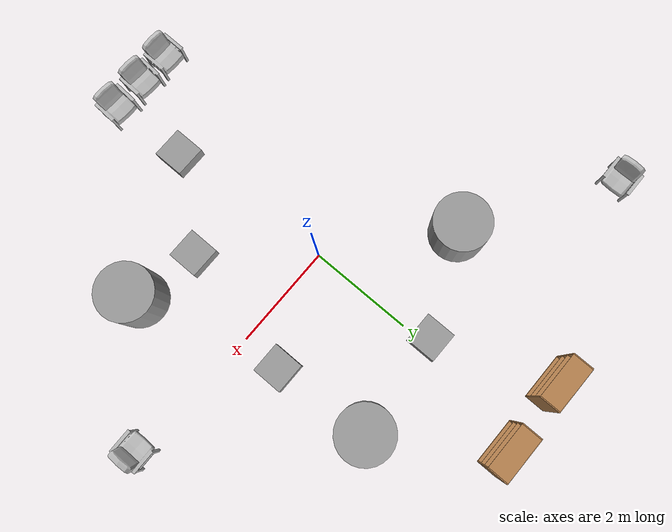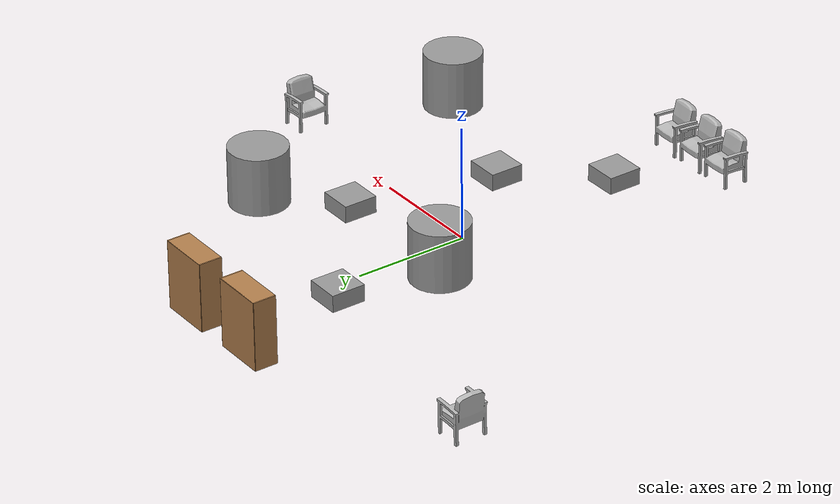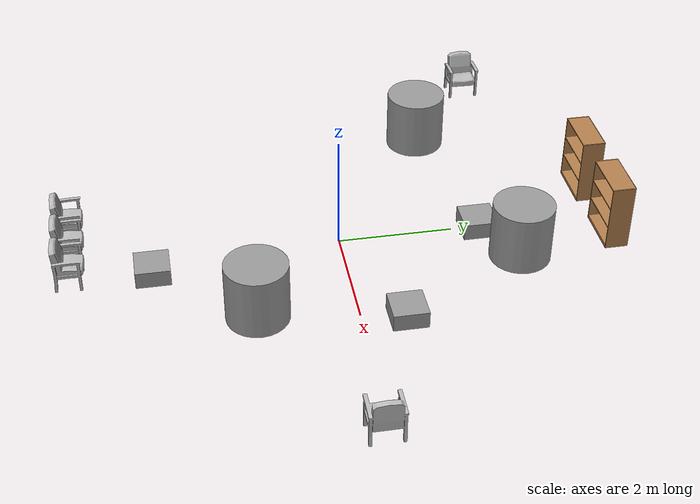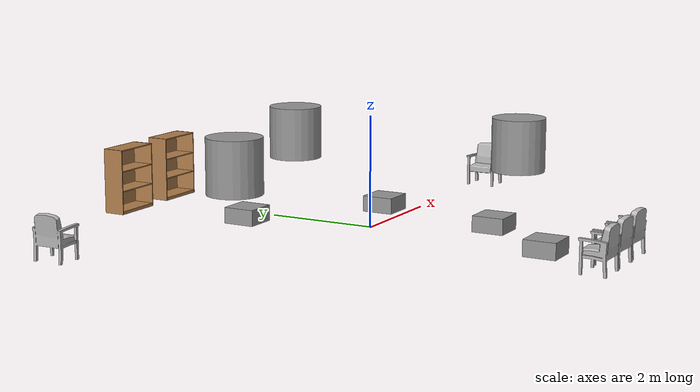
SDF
<?xml version='1.0'?>
<sdf version='1.7'>
  <model name='IMAV_indoor1'>
    <link name='link_0'>
      <inertial>
        <mass>1</mass>
        <inertia>
          <ixx>0.145833</ixx>
          <ixy>0</ixy>
          <ixz>0</ixz>
          <iyy>0.145833</iyy>
          <iyz>0</iyz>
          <izz>0.125</izz>
        </inertia>
        <pose>0 0 0 0 -0 0</pose>
      </inertial>
      <pose>-1.75504 1.69796 1.25 0 -0 0</pose>
      <gravity>1</gravity>
      <self_collide>0</self_collide>
      <kinematic>0</kinematic>
      <enable_wind>0</enable_wind>
      <visual name='visual'>
        <pose>0 0 0 0 -0 0</pose>
        <geometry>
          <cylinder>
            <radius>0.5</radius>
            <length>1</length>
          </cylinder>
        </geometry>
        <material>
          <lighting>1</lighting>
          <script>
            <uri>file://media/materials/scripts/gazebo.material</uri>
            <name>Gazebo/Grey</name>
          </script>
          <shader type='pixel'>
            <normal_map>__default__</normal_map>
          </shader>
          <ambient>0.3 0.3 0.3 1</ambient>
          <diffuse>0.7 0.7 0.7 1</diffuse>
          <specular>0.01 0.01 0.01 1</specular>
          <emissive>0 0 0 1</emissive>
        </material>
        <transparency>0</transparency>
        <cast_shadows>1</cast_shadows>
      </visual>
      <collision name='collision'>
        <laser_retro>0</laser_retro>
        <max_contacts>10</max_contacts>
        <pose>0 0 0 0 -0 0</pose>
        <geometry>
          <cylinder>
            <radius>0.1</radius>
            <length>2.5</length>
          </cylinder>
        </geometry>
        <surface>
          <friction>
            <ode>
              <mu>1</mu>
              <mu2>1</mu2>
              <fdir1>0 0 0</fdir1>
              <slip1>0</slip1>
              <slip2>0</slip2>
            </ode>
            <torsional>
              <coefficient>1</coefficient>
              <patch_radius>0</patch_radius>
              <surface_radius>0</surface_radius>
              <use_patch_radius>1</use_patch_radius>
              <ode>
                <slip>0</slip>
              </ode>
            </torsional>
          </friction>
          <bounce>
            <restitution_coefficient>0</restitution_coefficient>
            <threshold>1e+06</threshold>
          </bounce>
          <contact>
            <collide_without_contact>0</collide_without_contact>
            <collide_without_contact_bitmask>1</collide_without_contact_bitmask>
            <collide_bitmask>1</collide_bitmask>
            <ode>
              <soft_cfm>0</soft_cfm>
              <soft_erp>0.2</soft_erp>
              <kp>1e+13</kp>
              <kd>1</kd>
              <max_vel>0.01</max_vel>
              <min_depth>0</min_depth>
            </ode>
            <bullet>
              <split_impulse>1</split_impulse>
              <split_impulse_penetration_threshold>-0.01</split_impulse_penetration_threshold>
              <soft_cfm>0</soft_cfm>
              <soft_erp>0.2</soft_erp>
              <kp>1e+13</kp>
              <kd>1</kd>
            </bullet>
          </contact>
        </surface>
      </collision>
    </link>
    <link name='link_0_clone'>
      <inertial>
        <mass>1</mass>
        <inertia>
          <ixx>0.145833</ixx>
          <ixy>0</ixy>
          <ixz>0</ixz>
          <iyy>0.145833</iyy>
          <iyz>0</iyz>
          <izz>0.125</izz>
        </inertia>
        <pose>0 0 0 0 -0 0</pose>
      </inertial>
      <pose>1.8199 2.64467 1.25 0 -0 0</pose>
      <gravity>1</gravity>
      <self_collide>0</self_collide>
      <kinematic>0</kinematic>
      <enable_wind>0</enable_wind>
      <visual name='visual'>
        <pose>0 0 0 0 -0 0</pose>
        <geometry>
          <cylinder>
            <radius>0.5</radius>
            <length>1</length>
          </cylinder>
        </geometry>
        <material>
          <lighting>1</lighting>
          <script>
            <uri>file://media/materials/scripts/gazebo.material</uri>
            <name>Gazebo/Grey</name>
          </script>
          <shader type='pixel'>
            <normal_map>__default__</normal_map>
          </shader>
          <ambient>0.3 0.3 0.3 1</ambient>
          <diffuse>0.7 0.7 0.7 1</diffuse>
          <specular>0.01 0.01 0.01 1</specular>
          <emissive>0 0 0 1</emissive>
        </material>
        <transparency>0</transparency>
        <cast_shadows>1</cast_shadows>
      </visual>
      <collision name='collision'>
        <laser_retro>0</laser_retro>
        <max_contacts>10</max_contacts>
        <pose>0 0 0 0 -0 0</pose>
        <geometry>
          <cylinder>
            <radius>0.1</radius>
            <length>2.5</length>
          </cylinder>
        </geometry>
        <surface>
          <friction>
            <ode>
              <mu>1</mu>
              <mu2>1</mu2>
              <fdir1>0 0 0</fdir1>
              <slip1>0</slip1>
              <slip2>0</slip2>
            </ode>
            <torsional>
              <coefficient>1</coefficient>
              <patch_radius>0</patch_radius>
              <surface_radius>0</surface_radius>
              <use_patch_radius>1</use_patch_radius>
              <ode>
                <slip>0</slip>
              </ode>
            </torsional>
          </friction>
          <bounce>
            <restitution_coefficient>0</restitution_coefficient>
            <threshold>1e+06</threshold>
          </bounce>
          <contact>
            <collide_without_contact>0</collide_without_contact>
            <collide_without_contact_bitmask>1</collide_without_contact_bitmask>
            <collide_bitmask>1</collide_bitmask>
            <ode>
              <soft_cfm>0</soft_cfm>
              <soft_erp>0.2</soft_erp>
              <kp>1e+13</kp>
              <kd>1</kd>
              <max_vel>0.01</max_vel>
              <min_depth>0</min_depth>
            </ode>
            <bullet>
              <split_impulse>1</split_impulse>
              <split_impulse_penetration_threshold>-0.01</split_impulse_penetration_threshold>
              <soft_cfm>0</soft_cfm>
              <soft_erp>0.2</soft_erp>
              <kp>1e+13</kp>
              <kd>1</kd>
            </bullet>
          </contact>
        </surface>
      </collision>
    </link>
    <link name='link_0_clone_clone'>
      <inertial>
        <mass>1</mass>
        <inertia>
          <ixx>0.145833</ixx>
          <ixy>0</ixy>
          <ixz>0</ixz>
          <iyy>0.145833</iyy>
          <iyz>0</iyz>
          <izz>0.125</izz>
        </inertia>
        <pose>0 0 0 0 -0 0</pose>
      </inertial>
      <pose>2.60179 -1.70758 1.25 0 -0 0</pose>
      <gravity>1</gravity>
      <self_collide>0</self_collide>
      <kinematic>0</kinematic>
      <enable_wind>0</enable_wind>
      <visual name='visual'>
        <pose>0 0 0 0 -0 0</pose>
        <geometry>
          <cylinder>
            <radius>0.5</radius>
            <length>1</length>
          </cylinder>
        </geometry>
        <material>
          <lighting>1</lighting>
          <script>
            <uri>file://media/materials/scripts/gazebo.material</uri>
            <name>Gazebo/Grey</name>
          </script>
          <shader type='pixel'>
            <normal_map>__default__</normal_map>
          </shader>
          <ambient>0.3 0.3 0.3 1</ambient>
          <diffuse>0.7 0.7 0.7 1</diffuse>
          <specular>0.01 0.01 0.01 1</specular>
          <emissive>0 0 0 1</emissive>
        </material>
        <transparency>0</transparency>
        <cast_shadows>1</cast_shadows>
      </visual>
      <collision name='collision'>
        <laser_retro>0</laser_retro>
        <max_contacts>10</max_contacts>
        <pose>0 0 0 0 -0 0</pose>
        <geometry>
          <cylinder>
            <radius>0.1</radius>
            <length>2.5</length>
          </cylinder>
        </geometry>
        <surface>
          <friction>
            <ode>
              <mu>1</mu>
              <mu2>1</mu2>
              <fdir1>0 0 0</fdir1>
              <slip1>0</slip1>
              <slip2>0</slip2>
            </ode>
            <torsional>
              <coefficient>1</coefficient>
              <patch_radius>0</patch_radius>
              <surface_radius>0</surface_radius>
              <use_patch_radius>1</use_patch_radius>
              <ode>
                <slip>0</slip>
              </ode>
            </torsional>
          </friction>
          <bounce>
            <restitution_coefficient>0</restitution_coefficient>
            <threshold>1e+06</threshold>
          </bounce>
          <contact>
            <collide_without_contact>0</collide_without_contact>
            <collide_without_contact_bitmask>1</collide_without_contact_bitmask>
            <collide_bitmask>1</collide_bitmask>
            <ode>
              <soft_cfm>0</soft_cfm>
              <soft_erp>0.2</soft_erp>
              <kp>1e+13</kp>
              <kd>1</kd>
              <max_vel>0.01</max_vel>
              <min_depth>0</min_depth>
            </ode>
            <bullet>
              <split_impulse>1</split_impulse>
              <split_impulse_penetration_threshold>-0.01</split_impulse_penetration_threshold>
              <soft_cfm>0</soft_cfm>
              <soft_erp>0.2</soft_erp>
              <kp>1e+13</kp>
              <kd>1</kd>
            </bullet>
          </contact>
        </surface>
      </collision>
    </link>
    <link name='link_1'>
      <inertial>
        <mass>1</mass>
        <inertia>
          <ixx>0.166667</ixx>
          <ixy>0</ixy>
          <ixz>0</ixz>
          <iyy>0.166667</iyy>
          <iyz>0</iyz>
          <izz>0.166667</izz>
        </inertia>
        <pose>0 0 0 0 -0 0</pose>
      </inertial>
      <pose>-0.143352 2.50681 -0 0 -0 0</pose>
      <gravity>1</gravity>
      <self_collide>0</self_collide>
      <kinematic>0</kinematic>
      <enable_wind>0</enable_wind>
      <visual name='visual'>
        <pose>0 0 0 0 -0 0</pose>
        <geometry>
          <box>
            <size>0.6 0.6 0.3</size>
          </box>
        </geometry>
        <material>
          <lighting>1</lighting>
          <script>
            <uri>file://media/materials/scripts/gazebo.material</uri>
            <name>Gazebo/Grey</name>
          </script>
          <shader type='pixel'>
            <normal_map>__default__</normal_map>
          </shader>
          <ambient>0.3 0.3 0.3 1</ambient>
          <diffuse>0 0 0 1</diffuse>
          <specular>0.01 0.01 0.01 1</specular>
          <emissive>0 0 0 1</emissive>
        </material>
        <transparency>0</transparency>
        <cast_shadows>1</cast_shadows>
      </visual>
      <collision name='collision'>
        <laser_retro>0</laser_retro>
        <max_contacts>10</max_contacts>
        <pose>0 0 0 0 -0 0</pose>
        <geometry>
          <box>
            <size>1 1 1</size>
          </box>
        </geometry>
        <surface>
          <friction>
            <ode>
              <mu>1</mu>
              <mu2>1</mu2>
              <fdir1>0 0 0</fdir1>
              <slip1>0</slip1>
              <slip2>0</slip2>
            </ode>
            <torsional>
              <coefficient>1</coefficient>
              <patch_radius>0</patch_radius>
              <surface_radius>0</surface_radius>
              <use_patch_radius>1</use_patch_radius>
              <ode>
                <slip>0</slip>
              </ode>
            </torsional>
          </friction>
          <bounce>
            <restitution_coefficient>0</restitution_coefficient>
            <threshold>1e+06</threshold>
          </bounce>
          <contact>
            <collide_without_contact>0</collide_without_contact>
            <collide_without_contact_bitmask>1</collide_without_contact_bitmask>
            <collide_bitmask>1</collide_bitmask>
            <ode>
              <soft_cfm>0</soft_cfm>
              <soft_erp>0.2</soft_erp>
              <kp>1e+13</kp>
              <kd>1</kd>
              <max_vel>0.01</max_vel>
              <min_depth>0</min_depth>
            </ode>
            <bullet>
              <split_impulse>1</split_impulse>
              <split_impulse_penetration_threshold>-0.01</split_impulse_penetration_threshold>
              <soft_cfm>0</soft_cfm>
              <soft_erp>0.2</soft_erp>
              <kp>1e+13</kp>
              <kd>1</kd>
            </bullet>
          </contact>
        </surface>
      </collision>
    </link>
    <link name='link_1_clone'>
      <inertial>
        <mass>1</mass>
        <inertia>
          <ixx>0.166667</ixx>
          <ixy>0</ixy>
          <ixz>0</ixz>
          <iyy>0.166667</iyy>
          <iyz>0</iyz>
          <izz>0.166667</izz>
        </inertia>
        <pose>0 0 0 0 -0 0</pose>
      </inertial>
      <pose>2.00846 0.779957 -0 0 -0 0</pose>
      <gravity>1</gravity>
      <self_collide>0</self_collide>
      <kinematic>0</kinematic>
      <enable_wind>0</enable_wind>
      <visual name='visual'>
        <pose>0 0 0 0 -0 0</pose>
        <geometry>
          <box>
            <size>0.6 0.6 0.3</size>
          </box>
        </geometry>
        <material>
          <lighting>1</lighting>
          <script>
            <uri>file://media/materials/scripts/gazebo.material</uri>
            <name>Gazebo/Grey</name>
          </script>
          <shader type='pixel'>
            <normal_map>__default__</normal_map>
          </shader>
          <ambient>0.3 0.3 0.3 1</ambient>
          <diffuse>0 0 0 1</diffuse>
          <specular>0.01 0.01 0.01 1</specular>
          <emissive>0 0 0 1</emissive>
        </material>
        <transparency>0</transparency>
        <cast_shadows>1</cast_shadows>
      </visual>
      <collision name='collision'>
        <laser_retro>0</laser_retro>
        <max_contacts>10</max_contacts>
        <pose>0 0 0 0 -0 0</pose>
        <geometry>
          <box>
            <size>1 1 1</size>
          </box>
        </geometry>
        <surface>
          <friction>
            <ode>
              <mu>1</mu>
              <mu2>1</mu2>
              <fdir1>0 0 0</fdir1>
              <slip1>0</slip1>
              <slip2>0</slip2>
            </ode>
            <torsional>
              <coefficient>1</coefficient>
              <patch_radius>0</patch_radius>
              <surface_radius>0</surface_radius>
              <use_patch_radius>1</use_patch_radius>
              <ode>
                <slip>0</slip>
              </ode>
            </torsional>
          </friction>
          <bounce>
            <restitution_coefficient>0</restitution_coefficient>
            <threshold>1e+06</threshold>
          </bounce>
          <contact>
            <collide_without_contact>0</collide_without_contact>
            <collide_without_contact_bitmask>1</collide_without_contact_bitmask>
            <collide_bitmask>1</collide_bitmask>
            <ode>
              <soft_cfm>0</soft_cfm>
              <soft_erp>0.2</soft_erp>
              <kp>1e+13</kp>
              <kd>1</kd>
              <max_vel>0.01</max_vel>
              <min_depth>0</min_depth>
            </ode>
            <bullet>
              <split_impulse>1</split_impulse>
              <split_impulse_penetration_threshold>-0.01</split_impulse_penetration_threshold>
              <soft_cfm>0</soft_cfm>
              <soft_erp>0.2</soft_erp>
              <kp>1e+13</kp>
              <kd>1</kd>
            </bullet>
          </contact>
        </surface>
      </collision>
    </link>
    <link name='link_1_clone_0'>
      <inertial>
        <mass>1</mass>
        <inertia>
          <ixx>0.166667</ixx>
          <ixy>0</ixy>
          <ixz>0</ixz>
          <iyy>0.166667</iyy>
          <iyz>0</iyz>
          <izz>0.166667</izz>
        </inertia>
        <pose>0 0 0 0 -0 0</pose>
      </inertial>
      <pose>1.44613 -1.75101 -0 0 -0 0</pose>
      <gravity>1</gravity>
      <self_collide>0</self_collide>
      <kinematic>0</kinematic>
      <enable_wind>0</enable_wind>
      <visual name='visual'>
        <pose>0 0 0 0 -0 0</pose>
        <geometry>
          <box>
            <size>0.6 0.6 0.3</size>
          </box>
        </geometry>
        <material>
          <lighting>1</lighting>
          <script>
            <uri>file://media/materials/scripts/gazebo.material</uri>
            <name>Gazebo/Grey</name>
          </script>
          <shader type='pixel'>
            <normal_map>__default__</normal_map>
          </shader>
          <ambient>0.3 0.3 0.3 1</ambient>
          <diffuse>0 0 0 1</diffuse>
          <specular>0.01 0.01 0.01 1</specular>
          <emissive>0 0 0 1</emissive>
        </material>
        <transparency>0</transparency>
        <cast_shadows>1</cast_shadows>
      </visual>
      <collision name='collision'>
        <laser_retro>0</laser_retro>
        <max_contacts>10</max_contacts>
        <pose>0 0 0 0 -0 0</pose>
        <geometry>
          <box>
            <size>1 1 1</size>
          </box>
        </geometry>
        <surface>
          <friction>
            <ode>
              <mu>1</mu>
              <mu2>1</mu2>
              <fdir1>0 0 0</fdir1>
              <slip1>0</slip1>
              <slip2>0</slip2>
            </ode>
            <torsional>
              <coefficient>1</coefficient>
              <patch_radius>0</patch_radius>
              <surface_radius>0</surface_radius>
              <use_patch_radius>1</use_patch_radius>
              <ode>
                <slip>0</slip>
              </ode>
            </torsional>
          </friction>
          <bounce>
            <restitution_coefficient>0</restitution_coefficient>
            <threshold>1e+06</threshold>
          </bounce>
          <contact>
            <collide_without_contact>0</collide_without_contact>
            <collide_without_contact_bitmask>1</collide_without_contact_bitmask>
            <collide_bitmask>1</collide_bitmask>
            <ode>
              <soft_cfm>0</soft_cfm>
              <soft_erp>0.2</soft_erp>
              <kp>1e+13</kp>
              <kd>1</kd>
              <max_vel>0.01</max_vel>
              <min_depth>0</min_depth>
            </ode>
            <bullet>
              <split_impulse>1</split_impulse>
              <split_impulse_penetration_threshold>-0.01</split_impulse_penetration_threshold>
              <soft_cfm>0</soft_cfm>
              <soft_erp>0.2</soft_erp>
              <kp>1e+13</kp>
              <kd>1</kd>
            </bullet>
          </contact>
        </surface>
      </collision>
    </link>
    <link name='link_1_clone_1'>
      <inertial>
        <mass>1</mass>
        <inertia>
          <ixx>0.166667</ixx>
          <ixy>0</ixy>
          <ixz>0</ixz>
          <iyy>0.166667</iyy>
          <iyz>0</iyz>
          <izz>0.166667</izz>
        </inertia>
        <pose>0 0 0 0 -0 0</pose>
      </inertial>
      <pose>0.21444 -3.24039 -0 0 -0 0</pose>
      <gravity>1</gravity>
      <self_collide>0</self_collide>
      <kinematic>0</kinematic>
      <enable_wind>0</enable_wind>
      <visual name='visual'>
        <pose>0 0 0 0 -0 0</pose>
        <geometry>
          <box>
            <size>0.6 0.6 0.3</size>
          </box>
        </geometry>
        <material>
          <lighting>1</lighting>
          <script>
            <uri>file://media/materials/scripts/gazebo.material</uri>
            <name>Gazebo/Grey</name>
          </script>
          <shader type='pixel'>
            <normal_map>__default__</normal_map>
          </shader>
          <ambient>0.3 0.3 0.3 1</ambient>
          <diffuse>0 0 0 1</diffuse>
          <specular>0.01 0.01 0.01 1</specular>
          <emissive>0 0 0 1</emissive>
        </material>
        <transparency>0</transparency>
        <cast_shadows>1</cast_shadows>
      </visual>
      <collision name='collision'>
        <laser_retro>0</laser_retro>
        <max_contacts>10</max_contacts>
        <pose>0 0 0 0 -0 0</pose>
        <geometry>
          <box>
            <size>1 1 1</size>
          </box>
        </geometry>
        <surface>
          <friction>
            <ode>
              <mu>1</mu>
              <mu2>1</mu2>
              <fdir1>0 0 0</fdir1>
              <slip1>0</slip1>
              <slip2>0</slip2>
            </ode>
            <torsional>
              <coefficient>1</coefficient>
              <patch_radius>0</patch_radius>
              <surface_radius>0</surface_radius>
              <use_patch_radius>1</use_patch_radius>
              <ode>
                <slip>0</slip>
              </ode>
            </torsional>
          </friction>
          <bounce>
            <restitution_coefficient>0</restitution_coefficient>
            <threshold>1e+06</threshold>
          </bounce>
          <contact>
            <collide_without_contact>0</collide_without_contact>
            <collide_without_contact_bitmask>1</collide_without_contact_bitmask>
            <collide_bitmask>1</collide_bitmask>
            <ode>
              <soft_cfm>0</soft_cfm>
              <soft_erp>0.2</soft_erp>
              <kp>1e+13</kp>
              <kd>1</kd>
              <max_vel>0.01</max_vel>
              <min_depth>0</min_depth>
            </ode>
            <bullet>
              <split_impulse>1</split_impulse>
              <split_impulse_penetration_threshold>-0.01</split_impulse_penetration_threshold>
              <soft_cfm>0</soft_cfm>
              <soft_erp>0.2</soft_erp>
              <kp>1e+13</kp>
              <kd>1</kd>
            </bullet>
          </contact>
        </surface>
      </collision>
    </link>
    <model name='Chair'>
      <link name='body'>
        <pose>0 0 0 0 -0 1.5708</pose>
        <visual name='visual'>
          <geometry>
            <mesh>
              <uri>model://Chair/meshes/Chair.obj</uri>
              <scale>0.00817 0.00817 0.00817</scale>
            </mesh>
          </geometry>
        </visual>
        <collision name='collision'>
          <geometry>
            <mesh>
              <uri>model://Chair/meshes/Chair.obj</uri>
              <scale>0.00817 0.00817 0.00817</scale>
            </mesh>
          </geometry>
        </collision>
      </link>
      <pose>-4.50771 3.31652 -0 0 -0 0</pose>
    </model>
    <model name='Chair_0'>
      <link name='body'>
        <pose>0 0 0 0 -0 1.5708</pose>
        <visual name='visual'>
          <geometry>
            <mesh>
              <uri>model://Chair/meshes/Chair.obj</uri>
              <scale>0.00817 0.00817 0.00817</scale>
            </mesh>
          </geometry>
        </visual>
        <collision name='collision'>
          <geometry>
            <mesh>
              <uri>model://Chair/meshes/Chair.obj</uri>
              <scale>0.00817 0.00817 0.00817</scale>
            </mesh>
          </geometry>
        </collision>
      </link>
      <pose>4.57129 -0.136086 -0 0 0 -3.1415</pose>
    </model>
    <model name='Chair_1'>
      <link name='body'>
        <pose>0 0 0 0 -0 1.5708</pose>
        <visual name='visual'>
          <geometry>
            <mesh>
              <uri>model://Chair/meshes/Chair.obj</uri>
              <scale>0.00817 0.00817 0.00817</scale>
            </mesh>
          </geometry>
        </visual>
        <collision name='collision'>
          <geometry>
            <mesh>
              <uri>model://Chair/meshes/Chair.obj</uri>
              <scale>0.00817 0.00817 0.00817</scale>
            </mesh>
          </geometry>
        </collision>
      </link>
      <pose>-0.987285 -4.56378 -0 0 -0 1.55162</pose>
    </model>
    <model name='Chair_2'>
      <link name='body'>
        <pose>0 0 0 0 -0 1.5708</pose>
        <visual name='visual'>
          <geometry>
            <mesh>
              <uri>model://Chair/meshes/Chair.obj</uri>
              <scale>0.00817 0.00817 0.00817</scale>
            </mesh>
          </geometry>
        </visual>
        <collision name='collision'>
          <geometry>
            <mesh>
              <uri>model://Chair/meshes/Chair.obj</uri>
              <scale>0.00817 0.00817 0.00817</scale>
            </mesh>
          </geometry>
        </collision>
      </link>
      <pose>-0.346197 -4.56248 -0 0 -0 1.51666</pose>
    </model>
    <model name='Chair_2_clone'>
      <link name='body'>
        <pose>0 0 0 0 -0 1.5708</pose>
        <visual name='visual'>
          <geometry>
            <mesh>
              <uri>model://Chair/meshes/Chair.obj</uri>
              <scale>0.00817 0.00817 0.00817</scale>
            </mesh>
          </geometry>
        </visual>
        <collision name='collision'>
          <geometry>
            <mesh>
              <uri>model://Chair/meshes/Chair.obj</uri>
              <scale>0.00817 0.00817 0.00817</scale>
            </mesh>
          </geometry>
        </collision>
      </link>
      <pose>0.308674 -4.56202 -0 0 -0 1.51666</pose>
    </model>
    <model name='bookshelf'>
      <static>1</static>
      <link name='link'>
        <inertial>
          <mass>1</mass>
        </inertial>
        <collision name='back'>
          <pose>0 0.005 0.6 0 -0 0</pose>
          <geometry>
            <box>
              <size>0.9 0.01 1.2</size>
            </box>
          </geometry>
        </collision>
        <visual name='visual1'>
          <pose>0 0.005 0.6 0 -0 0</pose>
          <geometry>
            <box>
              <size>0.9 0.01 1.2</size>
            </box>
          </geometry>
          <material>
            <script>
              <uri>file://media/materials/scripts/gazebo.material</uri>
              <name>Gazebo/Wood</name>
            </script>
          </material>
        </visual>
        <collision name='left_side'>
          <pose>0.45 -0.195 0.6 0 -0 0</pose>
          <geometry>
            <box>
              <size>0.02 0.4 1.2</size>
            </box>
          </geometry>
        </collision>
        <visual name='visual2'>
          <pose>0.45 -0.195 0.6 0 -0 0</pose>
          <geometry>
            <box>
              <size>0.02 0.4 1.2</size>
            </box>
          </geometry>
          <material>
            <script>
              <uri>file://media/materials/scripts/gazebo.material</uri>
              <name>Gazebo/Wood</name>
            </script>
          </material>
        </visual>
        <collision name='right_side'>
          <pose>-0.45 -0.195 0.6 0 -0 0</pose>
          <geometry>
            <box>
              <size>0.02 0.4 1.2</size>
            </box>
          </geometry>
        </collision>
        <visual name='visual3'>
          <pose>-0.45 -0.195 0.6 0 -0 0</pose>
          <geometry>
            <box>
              <size>0.02 0.4 1.2</size>
            </box>
          </geometry>
          <material>
            <script>
              <uri>file://media/materials/scripts/gazebo.material</uri>
              <name>Gazebo/Wood</name>
            </script>
          </material>
        </visual>
        <collision name='bottom'>
          <pose>0 -0.195 0.03 0 -0 0</pose>
          <geometry>
            <box>
              <size>0.88 0.4 0.06</size>
            </box>
          </geometry>
        </collision>
        <visual name='visual4'>
          <pose>0 -0.195 0.03 0 -0 0</pose>
          <geometry>
            <box>
              <size>0.88 0.4 0.06</size>
            </box>
          </geometry>
          <material>
            <script>
              <uri>file://media/materials/scripts/gazebo.material</uri>
              <name>Gazebo/Wood</name>
            </script>
          </material>
        </visual>
        <collision name='top'>
          <pose>0 -0.195 1.19 0 -0 0</pose>
          <geometry>
            <box>
              <size>0.88 0.4 0.02</size>
            </box>
          </geometry>
        </collision>
        <visual name='visual5'>
          <pose>0 -0.195 1.19 0 -0 0</pose>
          <geometry>
            <box>
              <size>0.88 0.4 0.02</size>
            </box>
          </geometry>
          <material>
            <script>
              <uri>file://media/materials/scripts/gazebo.material</uri>
              <name>Gazebo/Wood</name>
            </script>
          </material>
        </visual>
        <collision name='low_shelf'>
          <pose>0 -0.195 0.43 0 -0 0</pose>
          <geometry>
            <box>
              <size>0.88 0.4 0.02</size>
            </box>
          </geometry>
        </collision>
        <visual name='visual6'>
          <pose>0 -0.195 0.43 0 -0 0</pose>
          <geometry>
            <box>
              <size>0.88 0.4 0.02</size>
            </box>
          </geometry>
          <material>
            <script>
              <uri>file://media/materials/scripts/gazebo.material</uri>
              <name>Gazebo/Wood</name>
            </script>
          </material>
        </visual>
        <collision name='high_shelf'>
          <pose>0 -0.195 0.8 0 -0 0</pose>
          <geometry>
            <box>
              <size>0.88 0.4 0.02</size>
            </box>
          </geometry>
        </collision>
        <visual name='visual7'>
          <pose>0 -0.195 0.8 0 -0 0</pose>
          <geometry>
            <box>
              <size>0.88 0.4 0.02</size>
            </box>
          </geometry>
          <material>
            <script>
              <uri>file://media/materials/scripts/gazebo.material</uri>
              <name>Gazebo/Wood</name>
            </script>
          </material>
        </visual>
      </link>
      <pose>-0.889801 4.83383 -0 0 -0 0</pose>
    </model>
    <model name='bookshelf_clone'>
      <static>1</static>
      <link name='link'>
        <inertial>
          <mass>1</mass>
        </inertial>
        <collision name='back'>
          <pose>0 0.005 0.6 0 -0 0</pose>
          <geometry>
            <box>
              <size>0.9 0.01 1.2</size>
            </box>
          </geometry>
        </collision>
        <visual name='visual1'>
          <pose>0 0.005 0.6 0 -0 0</pose>
          <geometry>
            <box>
              <size>0.9 0.01 1.2</size>
            </box>
          </geometry>
          <material>
            <script>
              <uri>file://media/materials/scripts/gazebo.material</uri>
              <name>Gazebo/Wood</name>
            </script>
          </material>
        </visual>
        <collision name='left_side'>
          <pose>0.45 -0.195 0.6 0 -0 0</pose>
          <geometry>
            <box>
              <size>0.02 0.4 1.2</size>
            </box>
          </geometry>
        </collision>
        <visual name='visual2'>
          <pose>0.45 -0.195 0.6 0 -0 0</pose>
          <geometry>
            <box>
              <size>0.02 0.4 1.2</size>
            </box>
          </geometry>
          <material>
            <script>
              <uri>file://media/materials/scripts/gazebo.material</uri>
              <name>Gazebo/Wood</name>
            </script>
          </material>
        </visual>
        <collision name='right_side'>
          <pose>-0.45 -0.195 0.6 0 -0 0</pose>
          <geometry>
            <box>
              <size>0.02 0.4 1.2</size>
            </box>
          </geometry>
        </collision>
        <visual name='visual3'>
          <pose>-0.45 -0.195 0.6 0 -0 0</pose>
          <geometry>
            <box>
              <size>0.02 0.4 1.2</size>
            </box>
          </geometry>
          <material>
            <script>
              <uri>file://media/materials/scripts/gazebo.material</uri>
              <name>Gazebo/Wood</name>
            </script>
          </material>
        </visual>
        <collision name='bottom'>
          <pose>0 -0.195 0.03 0 -0 0</pose>
          <geometry>
            <box>
              <size>0.88 0.4 0.06</size>
            </box>
          </geometry>
        </collision>
        <visual name='visual4'>
          <pose>0 -0.195 0.03 0 -0 0</pose>
          <geometry>
            <box>
              <size>0.88 0.4 0.06</size>
            </box>
          </geometry>
          <material>
            <script>
              <uri>file://media/materials/scripts/gazebo.material</uri>
              <name>Gazebo/Wood</name>
            </script>
          </material>
        </visual>
        <collision name='top'>
          <pose>0 -0.195 1.19 0 -0 0</pose>
          <geometry>
            <box>
              <size>0.88 0.4 0.02</size>
            </box>
          </geometry>
        </collision>
        <visual name='visual5'>
          <pose>0 -0.195 1.19 0 -0 0</pose>
          <geometry>
            <box>
              <size>0.88 0.4 0.02</size>
            </box>
          </geometry>
          <material>
            <script>
              <uri>file://media/materials/scripts/gazebo.material</uri>
              <name>Gazebo/Wood</name>
            </script>
          </material>
        </visual>
        <collision name='low_shelf'>
          <pose>0 -0.195 0.43 0 -0 0</pose>
          <geometry>
            <box>
              <size>0.88 0.4 0.02</size>
            </box>
          </geometry>
        </collision>
        <visual name='visual6'>
          <pose>0 -0.195 0.43 0 -0 0</pose>
          <geometry>
            <box>
              <size>0.88 0.4 0.02</size>
            </box>
          </geometry>
          <material>
            <script>
              <uri>file://media/materials/scripts/gazebo.material</uri>
              <name>Gazebo/Wood</name>
            </script>
          </material>
        </visual>
        <collision name='high_shelf'>
          <pose>0 -0.195 0.8 0 -0 0</pose>
          <geometry>
            <box>
              <size>0.88 0.4 0.02</size>
            </box>
          </geometry>
        </collision>
        <visual name='visual7'>
          <pose>0 -0.195 0.8 0 -0 0</pose>
          <geometry>
            <box>
              <size>0.88 0.4 0.02</size>
            </box>
          </geometry>
          <material>
            <script>
              <uri>file://media/materials/scripts/gazebo.material</uri>
              <name>Gazebo/Wood</name>
            </script>
          </material>
        </visual>
      </link>
      <pose>0.527587 4.8778 -0 0 -0 0</pose>
    </model>
    <static>0</static>
    <allow_auto_disable>1</allow_auto_disable>
  </model>
</sdf>
